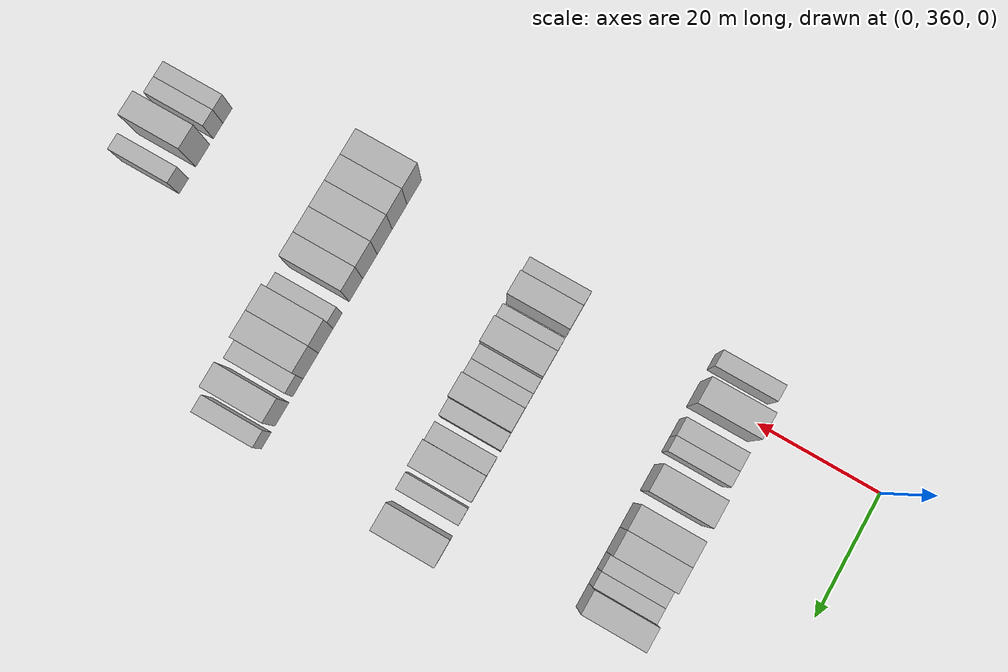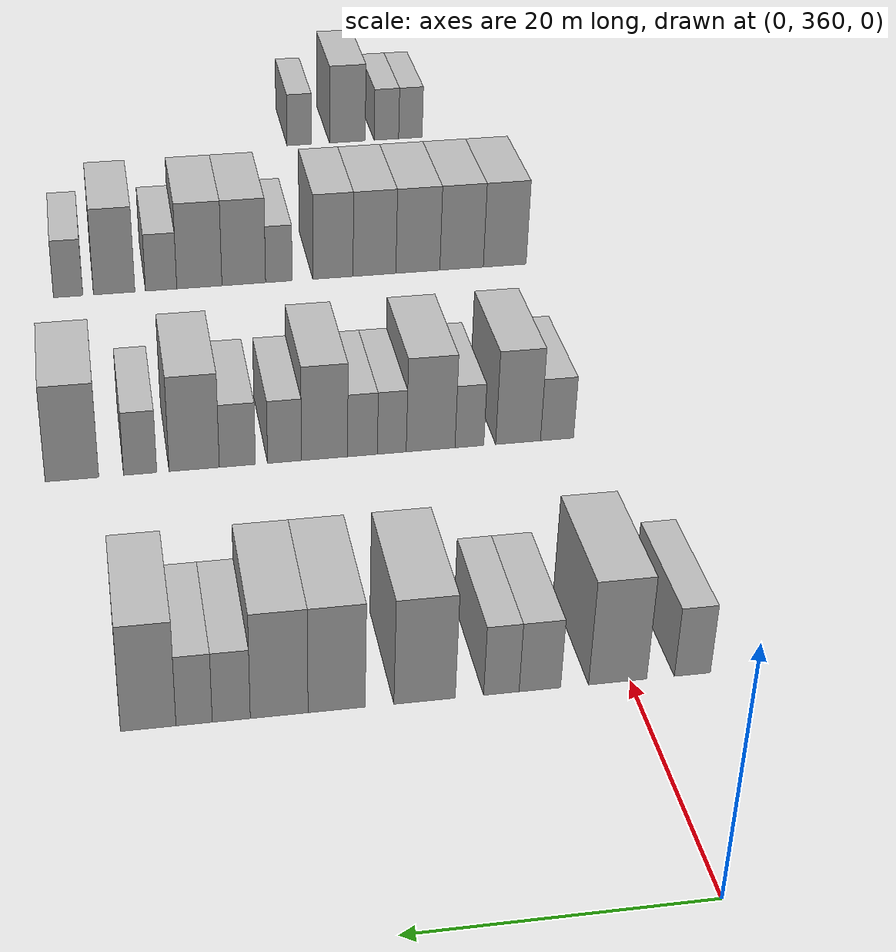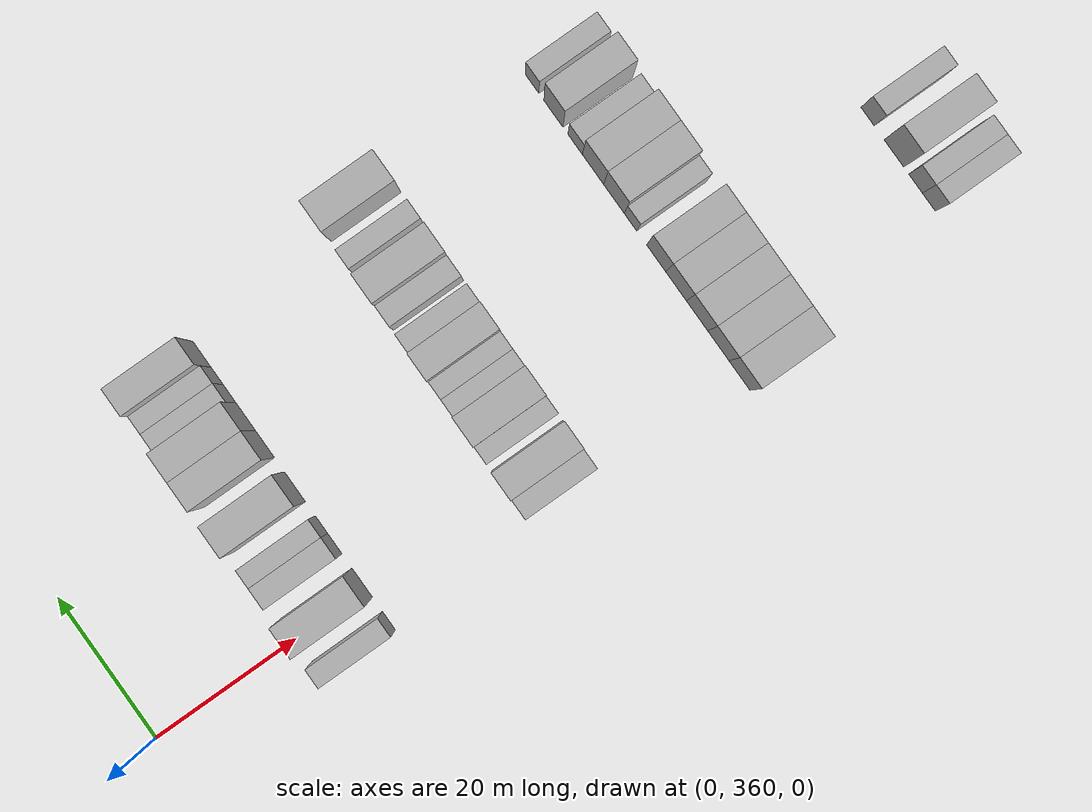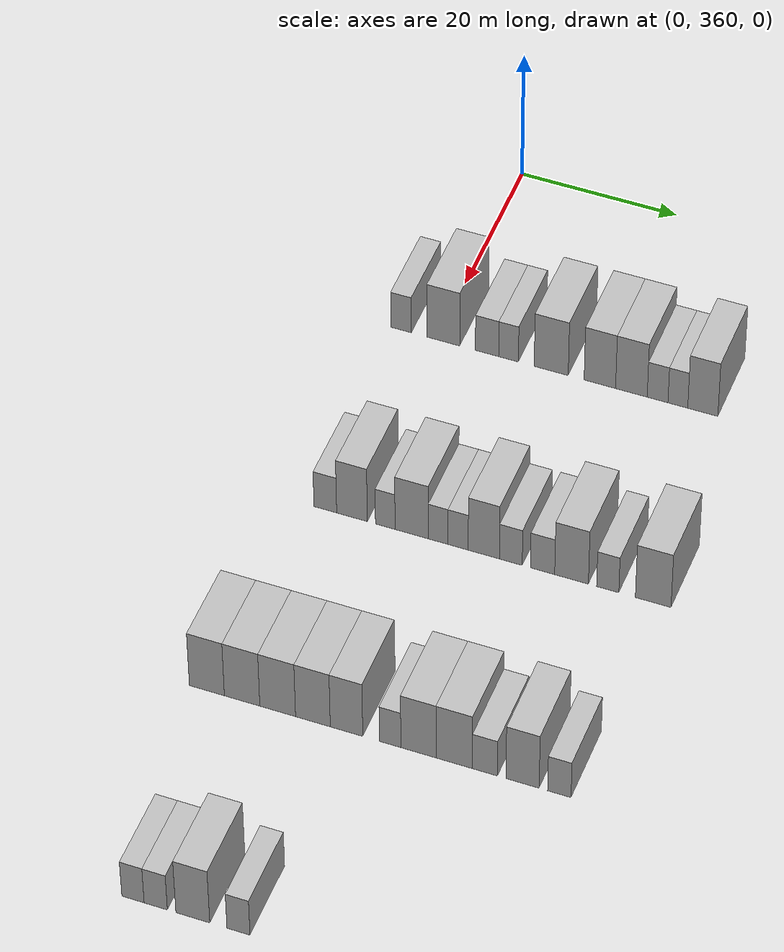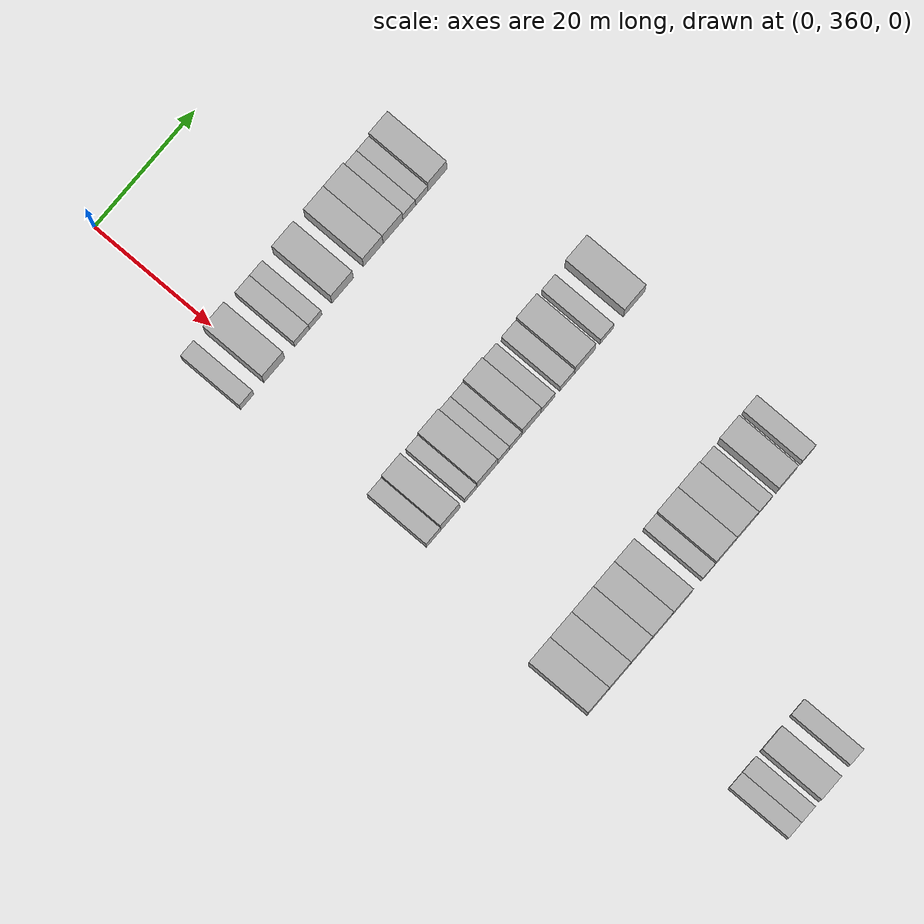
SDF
<sdf version="1.6">
 <world name="default">
  <model name="building_204">
   <static>1</static>
   <pose>25.0000 355.5029 0 0.000000 0.000000 0.000000</pose>
   <link name="link">
    <pose>0 0 3.00 0 0 0</pose>
    <collision name="collision"><geometry><box><size>10.0000 2.6158 6.0000</size></box></geometry></collision>
    <visual name="visual">
     <cast_shadows>0</cast_shadows>
     <geometry><box><size>10.0000 2.6158 6.0000</size></box></geometry>
     <material>
      <script>
       <uri>model://HANNAS_wall/materials/scripts</uri>
       <uri>model://HANNAS_wall/materials/textures</uri>
       <name>vrc/HANNAS_wall</name>
      </script>
     </material>
    </visual>
   </link>
  </model>
  <model name="building_205">
   <static>1</static>
   <pose>25.0000 360.8982 0 0.000000 0.000000 0.000000</pose>
   <link name="link">
    <pose>0 0 4.50 0 0 0</pose>
    <collision name="collision"><geometry><box><size>10.0000 4.1748 9.0000</size></box></geometry></collision>
    <visual name="visual">
     <cast_shadows>0</cast_shadows>
     <geometry><box><size>10.0000 4.1748 9.0000</size></box></geometry>
     <material>
      <script>
       <uri>model://HANNAS_wall/materials/scripts</uri>
       <uri>model://HANNAS_wall/materials/textures</uri>
       <name>vrc/HANNAS_wall</name>
      </script>
     </material>
    </visual>
   </link>
  </model>
  <model name="building_206">
   <static>1</static>
   <pose>25.0000 366.4586 0 0.000000 0.000000 0.000000</pose>
   <link name="link">
    <pose>0 0 3.00 0 0 0</pose>
    <collision name="collision"><geometry><box><size>10.0000 2.9460 6.0000</size></box></geometry></collision>
    <visual name="visual">
     <cast_shadows>0</cast_shadows>
     <geometry><box><size>10.0000 2.9460 6.0000</size></box></geometry>
     <material>
      <script>
       <uri>model://HANNAS_wall/materials/scripts</uri>
       <uri>model://HANNAS_wall/materials/textures</uri>
       <name>vrc/HANNAS_wall</name>
      </script>
     </material>
    </visual>
   </link>
  </model>
  <model name="building_207">
   <static>1</static>
   <pose>25.0000 369.1864 0 0.000000 0.000000 0.000000</pose>
   <link name="link">
    <pose>0 0 3.00 0 0 0</pose>
    <collision name="collision"><geometry><box><size>10.0000 2.5094 6.0000</size></box></geometry></collision>
    <visual name="visual">
     <cast_shadows>0</cast_shadows>
     <geometry><box><size>10.0000 2.5094 6.0000</size></box></geometry>
     <material>
      <script>
       <uri>model://HANNAS_wall/materials/scripts</uri>
       <uri>model://HANNAS_wall/materials/textures</uri>
       <name>vrc/HANNAS_wall</name>
      </script>
     </material>
    </visual>
   </link>
  </model>
  <model name="building_208">
   <static>1</static>
   <pose>25.0000 374.5882 0 0.000000 0.000000 0.000000</pose>
   <link name="link">
    <pose>0 0 4.50 0 0 0</pose>
    <collision name="collision"><geometry><box><size>10.0000 4.2943 9.0000</size></box></geometry></collision>
    <visual name="visual">
     <cast_shadows>0</cast_shadows>
     <geometry><box><size>10.0000 4.2943 9.0000</size></box></geometry>
     <material>
      <script>
       <uri>model://HANNAS_wall/materials/scripts</uri>
       <uri>model://HANNAS_wall/materials/textures</uri>
       <name>vrc/HANNAS_wall</name>
      </script>
     </material>
    </visual>
   </link>
  </model>
  <model name="building_209">
   <static>1</static>
   <pose>25.0000 380.7117 0 0.000000 0.000000 0.000000</pose>
   <link name="link">
    <pose>0 0 4.50 0 0 0</pose>
    <collision name="collision"><geometry><box><size>10.0000 3.9527 9.0000</size></box></geometry></collision>
    <visual name="visual">
     <cast_shadows>0</cast_shadows>
     <geometry><box><size>10.0000 3.9527 9.0000</size></box></geometry>
     <material>
      <script>
       <uri>model://HANNAS_wall/materials/scripts</uri>
       <uri>model://HANNAS_wall/materials/textures</uri>
       <name>vrc/HANNAS_wall</name>
      </script>
     </material>
    </visual>
   </link>
  </model>
  <model name="building_210">
   <static>1</static>
   <pose>25.0000 384.6689 0 0.000000 0.000000 0.000000</pose>
   <link name="link">
    <pose>0 0 4.50 0 0 0</pose>
    <collision name="collision"><geometry><box><size>10.0000 3.9617 9.0000</size></box></geometry></collision>
    <visual name="visual">
     <cast_shadows>0</cast_shadows>
     <geometry><box><size>10.0000 3.9617 9.0000</size></box></geometry>
     <material>
      <script>
       <uri>model://HANNAS_wall/materials/scripts</uri>
       <uri>model://HANNAS_wall/materials/textures</uri>
       <name>vrc/HANNAS_wall</name>
      </script>
     </material>
    </visual>
   </link>
  </model>
  <model name="building_211">
   <static>1</static>
   <pose>25.0000 387.9474 0 0.000000 0.000000 0.000000</pose>
   <link name="link">
    <pose>0 0 3.00 0 0 0</pose>
    <collision name="collision"><geometry><box><size>10.0000 2.5954 6.0000</size></box></geometry></collision>
    <visual name="visual">
     <cast_shadows>0</cast_shadows>
     <geometry><box><size>10.0000 2.5954 6.0000</size></box></geometry>
     <material>
      <script>
       <uri>model://HANNAS_wall/materials/scripts</uri>
       <uri>model://HANNAS_wall/materials/textures</uri>
       <name>vrc/HANNAS_wall</name>
      </script>
     </material>
    </visual>
   </link>
  </model>
  <model name="building_212">
   <static>1</static>
   <pose>25.0000 390.4776 0 0.000000 0.000000 0.000000</pose>
   <link name="link">
    <pose>0 0 3.00 0 0 0</pose>
    <collision name="collision"><geometry><box><size>10.0000 2.4650 6.0000</size></box></geometry></collision>
    <visual name="visual">
     <cast_shadows>0</cast_shadows>
     <geometry><box><size>10.0000 2.4650 6.0000</size></box></geometry>
     <material>
      <script>
       <uri>model://HANNAS_wall/materials/scripts</uri>
       <uri>model://HANNAS_wall/materials/textures</uri>
       <name>vrc/HANNAS_wall</name>
      </script>
     </material>
    </visual>
   </link>
  </model>
  <model name="building_213">
   <static>1</static>
   <pose>25.0000 393.5845 0 0.000000 0.000000 0.000000</pose>
   <link name="link">
    <pose>0 0 4.50 0 0 0</pose>
    <collision name="collision"><geometry><box><size>10.0000 3.7487 9.0000</size></box></geometry></collision>
    <visual name="visual">
     <cast_shadows>0</cast_shadows>
     <geometry><box><size>10.0000 3.7487 9.0000</size></box></geometry>
     <material>
      <script>
       <uri>model://HANNAS_wall/materials/scripts</uri>
       <uri>model://HANNAS_wall/materials/textures</uri>
       <name>vrc/HANNAS_wall</name>
      </script>
     </material>
    </visual>
   </link>
  </model>
  <model name="building_428">
   <static>1</static>
   <pose>55.0000 357.6111 0 0.000000 0.000000 0.000000</pose>
   <link name="link">
    <pose>0 0 3.00 0 0 0</pose>
    <collision name="collision"><geometry><box><size>10.0000 2.8282 6.0000</size></box></geometry></collision>
    <visual name="visual">
     <cast_shadows>0</cast_shadows>
     <geometry><box><size>10.0000 2.8282 6.0000</size></box></geometry>
     <material>
      <script>
       <uri>model://HANNAS_wall/materials/scripts</uri>
       <uri>model://HANNAS_wall/materials/textures</uri>
       <name>vrc/HANNAS_wall</name>
      </script>
     </material>
    </visual>
   </link>
  </model>
  <model name="building_429">
   <static>1</static>
   <pose>55.0000 360.9331 0 0.000000 0.000000 0.000000</pose>
   <link name="link">
    <pose>0 0 4.50 0 0 0</pose>
    <collision name="collision"><geometry><box><size>10.0000 3.8157 9.0000</size></box></geometry></collision>
    <visual name="visual">
     <cast_shadows>0</cast_shadows>
     <geometry><box><size>10.0000 3.8157 9.0000</size></box></geometry>
     <material>
      <script>
       <uri>model://HANNAS_wall/materials/scripts</uri>
       <uri>model://HANNAS_wall/materials/textures</uri>
       <name>vrc/HANNAS_wall</name>
      </script>
     </material>
    </visual>
   </link>
  </model>
  <model name="building_430">
   <static>1</static>
   <pose>55.0000 365.0594 0 0.000000 0.000000 0.000000</pose>
   <link name="link">
    <pose>0 0 3.00 0 0 0</pose>
    <collision name="collision"><geometry><box><size>10.0000 2.4368 6.0000</size></box></geometry></collision>
    <visual name="visual">
     <cast_shadows>0</cast_shadows>
     <geometry><box><size>10.0000 2.4368 6.0000</size></box></geometry>
     <material>
      <script>
       <uri>model://HANNAS_wall/materials/scripts</uri>
       <uri>model://HANNAS_wall/materials/textures</uri>
       <name>vrc/HANNAS_wall</name>
      </script>
     </material>
    </visual>
   </link>
  </model>
  <model name="building_431">
   <static>1</static>
   <pose>55.0000 368.3306 0 0.000000 0.000000 0.000000</pose>
   <link name="link">
    <pose>0 0 4.50 0 0 0</pose>
    <collision name="collision"><geometry><box><size>10.0000 4.1057 9.0000</size></box></geometry></collision>
    <visual name="visual">
     <cast_shadows>0</cast_shadows>
     <geometry><box><size>10.0000 4.1057 9.0000</size></box></geometry>
     <material>
      <script>
       <uri>model://HANNAS_wall/materials/scripts</uri>
       <uri>model://HANNAS_wall/materials/textures</uri>
       <name>vrc/HANNAS_wall</name>
      </script>
     </material>
    </visual>
   </link>
  </model>
  <model name="building_432">
   <static>1</static>
   <pose>55.0000 371.5910 0 0.000000 0.000000 0.000000</pose>
   <link name="link">
    <pose>0 0 3.00 0 0 0</pose>
    <collision name="collision"><geometry><box><size>10.0000 2.4151 6.0000</size></box></geometry></collision>
    <visual name="visual">
     <cast_shadows>0</cast_shadows>
     <geometry><box><size>10.0000 2.4151 6.0000</size></box></geometry>
     <material>
      <script>
       <uri>model://HANNAS_wall/materials/scripts</uri>
       <uri>model://HANNAS_wall/materials/textures</uri>
       <name>vrc/HANNAS_wall</name>
      </script>
     </material>
    </visual>
   </link>
  </model>
  <model name="building_433">
   <static>1</static>
   <pose>55.0000 374.0405 0 0.000000 0.000000 0.000000</pose>
   <link name="link">
    <pose>0 0 3.00 0 0 0</pose>
    <collision name="collision"><geometry><box><size>10.0000 2.4839 6.0000</size></box></geometry></collision>
    <visual name="visual">
     <cast_shadows>0</cast_shadows>
     <geometry><box><size>10.0000 2.4839 6.0000</size></box></geometry>
     <material>
      <script>
       <uri>model://HANNAS_wall/materials/scripts</uri>
       <uri>model://HANNAS_wall/materials/textures</uri>
       <name>vrc/HANNAS_wall</name>
      </script>
     </material>
    </visual>
   </link>
  </model>
  <model name="building_434">
   <static>1</static>
   <pose>55.0000 377.1916 0 0.000000 0.000000 0.000000</pose>
   <link name="link">
    <pose>0 0 4.50 0 0 0</pose>
    <collision name="collision"><geometry><box><size>10.0000 3.8182 9.0000</size></box></geometry></collision>
    <visual name="visual">
     <cast_shadows>0</cast_shadows>
     <geometry><box><size>10.0000 3.8182 9.0000</size></box></geometry>
     <material>
      <script>
       <uri>model://HANNAS_wall/materials/scripts</uri>
       <uri>model://HANNAS_wall/materials/textures</uri>
       <name>vrc/HANNAS_wall</name>
      </script>
     </material>
    </visual>
   </link>
  </model>
  <model name="building_435">
   <static>1</static>
   <pose>55.0000 380.4967 0 0.000000 0.000000 0.000000</pose>
   <link name="link">
    <pose>0 0 3.00 0 0 0</pose>
    <collision name="collision"><geometry><box><size>10.0000 2.7920 6.0000</size></box></geometry></collision>
    <visual name="visual">
     <cast_shadows>0</cast_shadows>
     <geometry><box><size>10.0000 2.7920 6.0000</size></box></geometry>
     <material>
      <script>
       <uri>model://HANNAS_wall/materials/scripts</uri>
       <uri>model://HANNAS_wall/materials/textures</uri>
       <name>vrc/HANNAS_wall</name>
      </script>
     </material>
    </visual>
   </link>
  </model>
  <model name="building_436">
   <static>1</static>
   <pose>55.0000 384.3716 0 0.000000 0.000000 0.000000</pose>
   <link name="link">
    <pose>0 0 3.00 0 0 0</pose>
    <collision name="collision"><geometry><box><size>10.0000 2.9579 6.0000</size></box></geometry></collision>
    <visual name="visual">
     <cast_shadows>0</cast_shadows>
     <geometry><box><size>10.0000 2.9579 6.0000</size></box></geometry>
     <material>
      <script>
       <uri>model://HANNAS_wall/materials/scripts</uri>
       <uri>model://HANNAS_wall/materials/textures</uri>
       <name>vrc/HANNAS_wall</name>
      </script>
     </material>
    </visual>
   </link>
  </model>
  <model name="building_437">
   <static>1</static>
   <pose>55.0000 387.8995 0 0.000000 0.000000 0.000000</pose>
   <link name="link">
    <pose>0 0 4.50 0 0 0</pose>
    <collision name="collision"><geometry><box><size>10.0000 4.0979 9.0000</size></box></geometry></collision>
    <visual name="visual">
     <cast_shadows>0</cast_shadows>
     <geometry><box><size>10.0000 4.0979 9.0000</size></box></geometry>
     <material>
      <script>
       <uri>model://HANNAS_wall/materials/scripts</uri>
       <uri>model://HANNAS_wall/materials/textures</uri>
       <name>vrc/HANNAS_wall</name>
      </script>
     </material>
    </visual>
   </link>
  </model>
  <model name="building_438">
   <static>1</static>
   <pose>55.0000 392.2927 0 0.000000 0.000000 0.000000</pose>
   <link name="link">
    <pose>0 0 3.00 0 0 0</pose>
    <collision name="collision"><geometry><box><size>10.0000 2.6885 6.0000</size></box></geometry></collision>
    <visual name="visual">
     <cast_shadows>0</cast_shadows>
     <geometry><box><size>10.0000 2.6885 6.0000</size></box></geometry>
     <material>
      <script>
       <uri>model://HANNAS_wall/materials/scripts</uri>
       <uri>model://HANNAS_wall/materials/textures</uri>
       <name>vrc/HANNAS_wall</name>
      </script>
     </material>
    </visual>
   </link>
  </model>
  <model name="building_439">
   <static>1</static>
   <pose>55.0000 397.7881 0 0.000000 0.000000 0.000000</pose>
   <link name="link">
    <pose>0 0 4.50 0 0 0</pose>
    <collision name="collision"><geometry><box><size>10.0000 4.3022 9.0000</size></box></geometry></collision>
    <visual name="visual">
     <cast_shadows>0</cast_shadows>
     <geometry><box><size>10.0000 4.3022 9.0000</size></box></geometry>
     <material>
      <script>
       <uri>model://HANNAS_wall/materials/scripts</uri>
       <uri>model://HANNAS_wall/materials/textures</uri>
       <name>vrc/HANNAS_wall</name>
      </script>
     </material>
    </visual>
   </link>
  </model>
  <model name="building_639">
   <static>1</static>
   <pose>85.0000 355.1806 0 0.000000 0.000000 0.000000</pose>
   <link name="link">
    <pose>0 0 4.50 0 0 0</pose>
    <collision name="collision"><geometry><box><size>10.0000 4.2442 9.0000</size></box></geometry></collision>
    <visual name="visual">
     <cast_shadows>0</cast_shadows>
     <geometry><box><size>10.0000 4.2442 9.0000</size></box></geometry>
     <material>
      <script>
       <uri>model://HANNAS_wall/materials/scripts</uri>
       <uri>model://HANNAS_wall/materials/textures</uri>
       <name>vrc/HANNAS_wall</name>
      </script>
     </material>
    </visual>
   </link>
  </model>
  <model name="building_640">
   <static>1</static>
   <pose>85.0000 359.4458 0 0.000000 0.000000 0.000000</pose>
   <link name="link">
    <pose>0 0 4.50 0 0 0</pose>
    <collision name="collision"><geometry><box><size>10.0000 4.2863 9.0000</size></box></geometry></collision>
    <visual name="visual">
     <cast_shadows>0</cast_shadows>
     <geometry><box><size>10.0000 4.2863 9.0000</size></box></geometry>
     <material>
      <script>
       <uri>model://HANNAS_wall/materials/scripts</uri>
       <uri>model://HANNAS_wall/materials/textures</uri>
       <name>vrc/HANNAS_wall</name>
      </script>
     </material>
    </visual>
   </link>
  </model>
  <model name="building_641">
   <static>1</static>
   <pose>85.0000 363.7443 0 0.000000 0.000000 0.000000</pose>
   <link name="link">
    <pose>0 0 4.50 0 0 0</pose>
    <collision name="collision"><geometry><box><size>10.0000 4.3106 9.0000</size></box></geometry></collision>
    <visual name="visual">
     <cast_shadows>0</cast_shadows>
     <geometry><box><size>10.0000 4.3106 9.0000</size></box></geometry>
     <material>
      <script>
       <uri>model://HANNAS_wall/materials/scripts</uri>
       <uri>model://HANNAS_wall/materials/textures</uri>
       <name>vrc/HANNAS_wall</name>
      </script>
     </material>
    </visual>
   </link>
  </model>
  <model name="building_642">
   <static>1</static>
   <pose>85.0000 367.9860 0 0.000000 0.000000 0.000000</pose>
   <link name="link">
    <pose>0 0 4.50 0 0 0</pose>
    <collision name="collision"><geometry><box><size>10.0000 4.1729 9.0000</size></box></geometry></collision>
    <visual name="visual">
     <cast_shadows>0</cast_shadows>
     <geometry><box><size>10.0000 4.1729 9.0000</size></box></geometry>
     <material>
      <script>
       <uri>model://HANNAS_wall/materials/scripts</uri>
       <uri>model://HANNAS_wall/materials/textures</uri>
       <name>vrc/HANNAS_wall</name>
      </script>
     </material>
    </visual>
   </link>
  </model>
  <model name="building_643">
   <static>1</static>
   <pose>85.0000 372.0165 0 0.000000 0.000000 0.000000</pose>
   <link name="link">
    <pose>0 0 4.50 0 0 0</pose>
    <collision name="collision"><geometry><box><size>10.0000 3.8881 9.0000</size></box></geometry></collision>
    <visual name="visual">
     <cast_shadows>0</cast_shadows>
     <geometry><box><size>10.0000 3.8881 9.0000</size></box></geometry>
     <material>
      <script>
       <uri>model://HANNAS_wall/materials/scripts</uri>
       <uri>model://HANNAS_wall/materials/textures</uri>
       <name>vrc/HANNAS_wall</name>
      </script>
     </material>
    </visual>
   </link>
  </model>
  <model name="building_644">
   <static>1</static>
   <pose>85.0000 377.2361 0 0.000000 0.000000 0.000000</pose>
   <link name="link">
    <pose>0 0 3.00 0 0 0</pose>
    <collision name="collision"><geometry><box><size>10.0000 2.5511 6.0000</size></box></geometry></collision>
    <visual name="visual">
     <cast_shadows>0</cast_shadows>
     <geometry><box><size>10.0000 2.5511 6.0000</size></box></geometry>
     <material>
      <script>
       <uri>model://HANNAS_wall/materials/scripts</uri>
       <uri>model://HANNAS_wall/materials/textures</uri>
       <name>vrc/HANNAS_wall</name>
      </script>
     </material>
    </visual>
   </link>
  </model>
  <model name="building_645">
   <static>1</static>
   <pose>85.0000 380.6014 0 0.000000 0.000000 0.000000</pose>
   <link name="link">
    <pose>0 0 4.50 0 0 0</pose>
    <collision name="collision"><geometry><box><size>10.0000 4.1794 9.0000</size></box></geometry></collision>
    <visual name="visual">
     <cast_shadows>0</cast_shadows>
     <geometry><box><size>10.0000 4.1794 9.0000</size></box></geometry>
     <material>
      <script>
       <uri>model://HANNAS_wall/materials/scripts</uri>
       <uri>model://HANNAS_wall/materials/textures</uri>
       <name>vrc/HANNAS_wall</name>
      </script>
     </material>
    </visual>
   </link>
  </model>
  <model name="building_646">
   <static>1</static>
   <pose>85.0000 384.8403 0 0.000000 0.000000 0.000000</pose>
   <link name="link">
    <pose>0 0 4.50 0 0 0</pose>
    <collision name="collision"><geometry><box><size>10.0000 4.2985 9.0000</size></box></geometry></collision>
    <visual name="visual">
     <cast_shadows>0</cast_shadows>
     <geometry><box><size>10.0000 4.2985 9.0000</size></box></geometry>
     <material>
      <script>
       <uri>model://HANNAS_wall/materials/scripts</uri>
       <uri>model://HANNAS_wall/materials/textures</uri>
       <name>vrc/HANNAS_wall</name>
      </script>
     </material>
    </visual>
   </link>
  </model>
  <model name="building_647">
   <static>1</static>
   <pose>85.0000 388.4713 0 0.000000 0.000000 0.000000</pose>
   <link name="link">
    <pose>0 0 3.00 0 0 0</pose>
    <collision name="collision"><geometry><box><size>10.0000 2.9635 6.0000</size></box></geometry></collision>
    <visual name="visual">
     <cast_shadows>0</cast_shadows>
     <geometry><box><size>10.0000 2.9635 6.0000</size></box></geometry>
     <material>
      <script>
       <uri>model://HANNAS_wall/materials/scripts</uri>
       <uri>model://HANNAS_wall/materials/textures</uri>
       <name>vrc/HANNAS_wall</name>
      </script>
     </material>
    </visual>
   </link>
  </model>
  <model name="building_648">
   <static>1</static>
   <pose>85.0000 392.9029 0 0.000000 0.000000 0.000000</pose>
   <link name="link">
    <pose>0 0 4.50 0 0 0</pose>
    <collision name="collision"><geometry><box><size>10.0000 3.8998 9.0000</size></box></geometry></collision>
    <visual name="visual">
     <cast_shadows>0</cast_shadows>
     <geometry><box><size>10.0000 3.8998 9.0000</size></box></geometry>
     <material>
      <script>
       <uri>model://HANNAS_wall/materials/scripts</uri>
       <uri>model://HANNAS_wall/materials/textures</uri>
       <name>vrc/HANNAS_wall</name>
      </script>
     </material>
    </visual>
   </link>
  </model>
  <model name="building_649">
   <static>1</static>
   <pose>85.0000 397.2246 0 0.000000 0.000000 0.000000</pose>
   <link name="link">
    <pose>0 0 3.00 0 0 0</pose>
    <collision name="collision"><geometry><box><size>10.0000 2.7435 6.0000</size></box></geometry></collision>
    <visual name="visual">
     <cast_shadows>0</cast_shadows>
     <geometry><box><size>10.0000 2.7435 6.0000</size></box></geometry>
     <material>
      <script>
       <uri>model://HANNAS_wall/materials/scripts</uri>
       <uri>model://HANNAS_wall/materials/textures</uri>
       <name>vrc/HANNAS_wall</name>
      </script>
     </material>
    </visual>
   </link>
  </model>
  <model name="building_862">
   <static>1</static>
   <pose>115.0000 358.9282 0 0.000000 0.000000 0.000000</pose>
   <link name="link">
    <pose>0 0 3.00 0 0 0</pose>
    <collision name="collision"><geometry><box><size>10.0000 2.6213 6.0000</size></box></geometry></collision>
    <visual name="visual">
     <cast_shadows>0</cast_shadows>
     <geometry><box><size>10.0000 2.6213 6.0000</size></box></geometry>
     <material>
      <script>
       <uri>model://HANNAS_wall/materials/scripts</uri>
       <uri>model://HANNAS_wall/materials/textures</uri>
       <name>vrc/HANNAS_wall</name>
      </script>
     </material>
    </visual>
   </link>
  </model>
  <model name="building_863">
   <static>1</static>
   <pose>115.0000 361.6030 0 0.000000 0.000000 0.000000</pose>
   <link name="link">
    <pose>0 0 3.00 0 0 0</pose>
    <collision name="collision"><geometry><box><size>10.0000 2.7283 6.0000</size></box></geometry></collision>
    <visual name="visual">
     <cast_shadows>0</cast_shadows>
     <geometry><box><size>10.0000 2.7283 6.0000</size></box></geometry>
     <material>
      <script>
       <uri>model://HANNAS_wall/materials/scripts</uri>
       <uri>model://HANNAS_wall/materials/textures</uri>
       <name>vrc/HANNAS_wall</name>
      </script>
     </material>
    </visual>
   </link>
  </model>
  <model name="building_864">
   <static>1</static>
   <pose>115.0000 365.9481 0 0.000000 0.000000 0.000000</pose>
   <link name="link">
    <pose>0 0 4.50 0 0 0</pose>
    <collision name="collision"><geometry><box><size>10.0000 3.9619 9.0000</size></box></geometry></collision>
    <visual name="visual">
     <cast_shadows>0</cast_shadows>
     <geometry><box><size>10.0000 3.9619 9.0000</size></box></geometry>
     <material>
      <script>
       <uri>model://HANNAS_wall/materials/scripts</uri>
       <uri>model://HANNAS_wall/materials/textures</uri>
       <name>vrc/HANNAS_wall</name>
      </script>
     </material>
    </visual>
   </link>
  </model>
  <model name="building_865">
   <static>1</static>
   <pose>115.0000 371.2706 0 0.000000 0.000000 0.000000</pose>
   <link name="link">
    <pose>0 0 3.00 0 0 0</pose>
    <collision name="collision"><geometry><box><size>10.0000 2.6831 6.0000</size></box></geometry></collision>
    <visual name="visual">
     <cast_shadows>0</cast_shadows>
     <geometry><box><size>10.0000 2.6831 6.0000</size></box></geometry>
     <material>
      <script>
       <uri>model://HANNAS_wall/materials/scripts</uri>
       <uri>model://HANNAS_wall/materials/textures</uri>
       <name>vrc/HANNAS_wall</name>
      </script>
     </material>
    </visual>
   </link>
  </model>
 </world>
</sdf>
